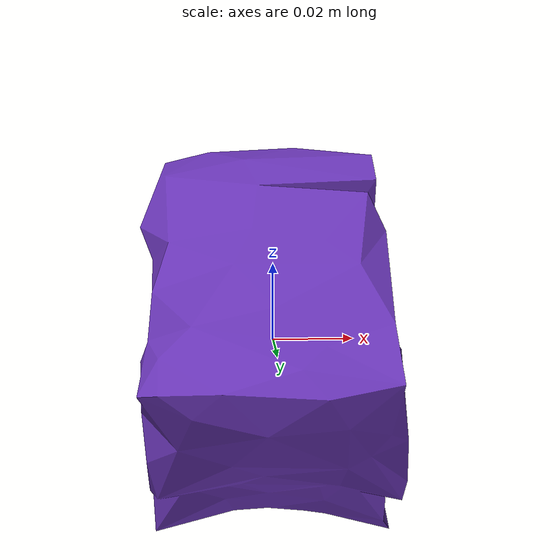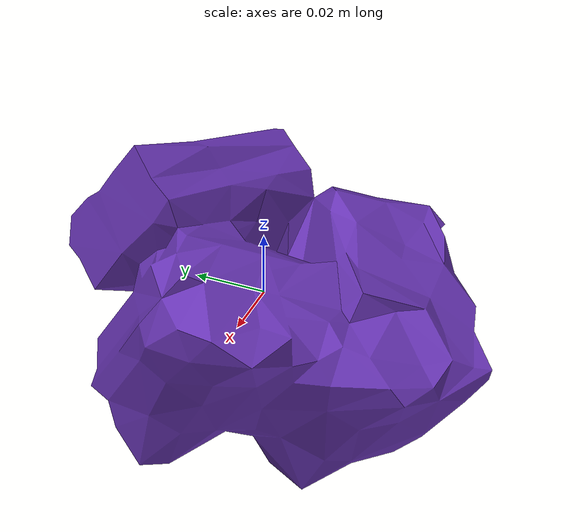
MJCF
<mujoco model="top_watertight_tiny">

  <asset>
    <mesh file="top_watertight_tiny.obj"/>
    <mesh file="top_watertight_tiny_collision_0.obj"/>
    <mesh file="top_watertight_tiny_collision_1.obj"/>
    <mesh file="top_watertight_tiny_collision_2.obj"/>
    <mesh file="top_watertight_tiny_collision_3.obj"/>
    <mesh file="top_watertight_tiny_collision_4.obj"/>
    <mesh file="top_watertight_tiny_collision_5.obj"/>
    <mesh file="top_watertight_tiny_collision_6.obj"/>
    <mesh file="top_watertight_tiny_collision_7.obj"/>
    <mesh file="top_watertight_tiny_collision_8.obj"/>
    <mesh file="top_watertight_tiny_collision_9.obj"/>
    <mesh file="top_watertight_tiny_collision_10.obj"/>
    <mesh file="top_watertight_tiny_collision_11.obj"/>
    <mesh file="top_watertight_tiny_collision_12.obj"/>
    <mesh file="top_watertight_tiny_collision_13.obj"/>
    <mesh file="top_watertight_tiny_collision_14.obj"/>
    <mesh file="top_watertight_tiny_collision_15.obj"/>
    <mesh file="top_watertight_tiny_collision_16.obj"/>
    <mesh file="top_watertight_tiny_collision_17.obj"/>
    <mesh file="top_watertight_tiny_collision_18.obj"/>
    <mesh file="top_watertight_tiny_collision_19.obj"/>
    <mesh file="top_watertight_tiny_collision_20.obj"/>
    <mesh file="top_watertight_tiny_collision_21.obj"/>
    <mesh file="top_watertight_tiny_collision_22.obj"/>
    <mesh file="top_watertight_tiny_collision_23.obj"/>
    <mesh file="top_watertight_tiny_collision_24.obj"/>
    <mesh file="top_watertight_tiny_collision_25.obj"/>
    <mesh file="top_watertight_tiny_collision_26.obj"/>
    <mesh file="top_watertight_tiny_collision_27.obj"/>
    <mesh file="top_watertight_tiny_collision_28.obj"/>
    <mesh file="top_watertight_tiny_collision_29.obj"/>
    <mesh file="top_watertight_tiny_collision_30.obj"/>
    <mesh file="top_watertight_tiny_collision_31.obj"/>
    <mesh file="top_watertight_tiny_collision_32.obj"/>
    <mesh file="top_watertight_tiny_collision_33.obj"/>
    <mesh file="top_watertight_tiny_collision_34.obj"/>
    <mesh file="top_watertight_tiny_collision_35.obj"/>
    <mesh file="top_watertight_tiny_collision_36.obj"/>
    <mesh file="top_watertight_tiny_collision_37.obj"/>
    <mesh file="top_watertight_tiny_collision_38.obj"/>
    <mesh file="top_watertight_tiny_collision_39.obj"/>
    <mesh file="top_watertight_tiny_collision_40.obj"/>
    <mesh file="top_watertight_tiny_collision_41.obj"/>
    <mesh file="top_watertight_tiny_collision_42.obj"/>
    <mesh file="top_watertight_tiny_collision_43.obj"/>
    <mesh file="top_watertight_tiny_collision_44.obj"/>
    <mesh file="top_watertight_tiny_collision_45.obj"/>
    <mesh file="top_watertight_tiny_collision_46.obj"/>
  </asset>
  <worldbody>
    <body name="top_watertight_tiny">
      <freejoint/>
      <geom solimp="0.90 0.95 0.001" solref="0.02 1.0" density="100" friction="0.95 0.4 0.3" rgba="0.4 0.2 0.7 1" mesh="top_watertight_tiny" group="2" type="mesh" contype="0" conaffinity="0"/>
      <geom solimp="0.90 0.95 0.001" solref="0.02 1.0" density="100" friction="0.95 0.4 0.3" mesh="top_watertight_tiny_collision_0" rgba="0.8789057015531391 0.9795994640368366 0.813010173813531 1" group="3" type="mesh"/>
      <geom solimp="0.90 0.95 0.001" solref="0.02 1.0" density="100" friction="0.95 0.4 0.3" mesh="top_watertight_tiny_collision_1" rgba="0.8269957039042385 0.6930194602796532 0.49572664424239576 1" group="3" type="mesh"/>
      <geom solimp="0.90 0.95 0.001" solref="0.02 1.0" density="100" friction="0.95 0.4 0.3" mesh="top_watertight_tiny_collision_2" rgba="0.7753977788439487 0.030827224695126 0.9653889981956425 1" group="3" type="mesh"/>
      <geom solimp="0.90 0.95 0.001" solref="0.02 1.0" density="100" friction="0.95 0.4 0.3" mesh="top_watertight_tiny_collision_3" rgba="0.04916142695101067 0.4462305657748179 0.6066776407132272 1" group="3" type="mesh"/>
      <geom solimp="0.90 0.95 0.001" solref="0.02 1.0" density="100" friction="0.95 0.4 0.3" mesh="top_watertight_tiny_collision_4" rgba="0.6390554225004627 0.41450779144883243 0.7675728899906572 1" group="3" type="mesh"/>
      <geom solimp="0.90 0.95 0.001" solref="0.02 1.0" density="100" friction="0.95 0.4 0.3" mesh="top_watertight_tiny_collision_5" rgba="0.874015873884264 0.06428050105766347 0.48990608668945157 1" group="3" type="mesh"/>
      <geom solimp="0.90 0.95 0.001" solref="0.02 1.0" density="100" friction="0.95 0.4 0.3" mesh="top_watertight_tiny_collision_6" rgba="0.42431912544873096 0.7610477745635167 0.6992953303936881 1" group="3" type="mesh"/>
      <geom solimp="0.90 0.95 0.001" solref="0.02 1.0" density="100" friction="0.95 0.4 0.3" mesh="top_watertight_tiny_collision_7" rgba="0.15440581398732034 0.5288853172441055 0.3470849717280966 1" group="3" type="mesh"/>
      <geom solimp="0.90 0.95 0.001" solref="0.02 1.0" density="100" friction="0.95 0.4 0.3" mesh="top_watertight_tiny_collision_8" rgba="0.5626903105612336 0.11574557386385098 0.351118623564345 1" group="3" type="mesh"/>
      <geom solimp="0.90 0.95 0.001" solref="0.02 1.0" density="100" friction="0.95 0.4 0.3" mesh="top_watertight_tiny_collision_9" rgba="0.22741964365880396 0.018070590472487047 0.9060914291170475 1" group="3" type="mesh"/>
      <geom solimp="0.90 0.95 0.001" solref="0.02 1.0" density="100" friction="0.95 0.4 0.3" mesh="top_watertight_tiny_collision_10" rgba="0.5222883388619958 0.26812727481960386 0.5811096261207229 1" group="3" type="mesh"/>
      <geom solimp="0.90 0.95 0.001" solref="0.02 1.0" density="100" friction="0.95 0.4 0.3" mesh="top_watertight_tiny_collision_11" rgba="0.18358823708894623 0.7686155497230626 0.6838168368764023 1" group="3" type="mesh"/>
      <geom solimp="0.90 0.95 0.001" solref="0.02 1.0" density="100" friction="0.95 0.4 0.3" mesh="top_watertight_tiny_collision_12" rgba="0.37772840315476053 0.38082552764259203 0.572187072569872 1" group="3" type="mesh"/>
      <geom solimp="0.90 0.95 0.001" solref="0.02 1.0" density="100" friction="0.95 0.4 0.3" mesh="top_watertight_tiny_collision_13" rgba="0.47432937342295034 0.7016688652716457 0.37213932110715264 1" group="3" type="mesh"/>
      <geom solimp="0.90 0.95 0.001" solref="0.02 1.0" density="100" friction="0.95 0.4 0.3" mesh="top_watertight_tiny_collision_14" rgba="0.6847202688996531 0.5440699129645219 0.9606474060478593 1" group="3" type="mesh"/>
      <geom solimp="0.90 0.95 0.001" solref="0.02 1.0" density="100" friction="0.95 0.4 0.3" mesh="top_watertight_tiny_collision_15" rgba="0.9479362272215521 0.02156147813066933 0.716612980421734 1" group="3" type="mesh"/>
      <geom solimp="0.90 0.95 0.001" solref="0.02 1.0" density="100" friction="0.95 0.4 0.3" mesh="top_watertight_tiny_collision_16" rgba="0.9538009110551573 0.6657504012141455 0.0785634836965654 1" group="3" type="mesh"/>
      <geom solimp="0.90 0.95 0.001" solref="0.02 1.0" density="100" friction="0.95 0.4 0.3" mesh="top_watertight_tiny_collision_17" rgba="0.09490124566087377 0.7555423247967329 0.48700630159472513 1" group="3" type="mesh"/>
      <geom solimp="0.90 0.95 0.001" solref="0.02 1.0" density="100" friction="0.95 0.4 0.3" mesh="top_watertight_tiny_collision_18" rgba="0.38177113351281056 0.8648240281562807 0.17344064155078953 1" group="3" type="mesh"/>
      <geom solimp="0.90 0.95 0.001" solref="0.02 1.0" density="100" friction="0.95 0.4 0.3" mesh="top_watertight_tiny_collision_19" rgba="0.4018580857332408 0.10916240909560249 0.24466670514723687 1" group="3" type="mesh"/>
      <geom solimp="0.90 0.95 0.001" solref="0.02 1.0" density="100" friction="0.95 0.4 0.3" mesh="top_watertight_tiny_collision_20" rgba="0.11548428134288535 0.08399452765747872 0.9400143969625043 1" group="3" type="mesh"/>
      <geom solimp="0.90 0.95 0.001" solref="0.02 1.0" density="100" friction="0.95 0.4 0.3" mesh="top_watertight_tiny_collision_21" rgba="0.9710992890859642 0.09282020980820183 0.21552355676573864 1" group="3" type="mesh"/>
      <geom solimp="0.90 0.95 0.001" solref="0.02 1.0" density="100" friction="0.95 0.4 0.3" mesh="top_watertight_tiny_collision_22" rgba="0.2097683660892128 0.5423391791398445 0.8478522114071785 1" group="3" type="mesh"/>
      <geom solimp="0.90 0.95 0.001" solref="0.02 1.0" density="100" friction="0.95 0.4 0.3" mesh="top_watertight_tiny_collision_23" rgba="0.4332273385509655 0.18301943961468115 0.5407096844413061 1" group="3" type="mesh"/>
      <geom solimp="0.90 0.95 0.001" solref="0.02 1.0" density="100" friction="0.95 0.4 0.3" mesh="top_watertight_tiny_collision_24" rgba="0.8103687371489551 0.43597717710427086 0.6058743222153554 1" group="3" type="mesh"/>
      <geom solimp="0.90 0.95 0.001" solref="0.02 1.0" density="100" friction="0.95 0.4 0.3" mesh="top_watertight_tiny_collision_25" rgba="0.8184554482854945 0.8491812155200806 0.8540523596920206 1" group="3" type="mesh"/>
      <geom solimp="0.90 0.95 0.001" solref="0.02 1.0" density="100" friction="0.95 0.4 0.3" mesh="top_watertight_tiny_collision_26" rgba="0.4649336923576135 0.4716089593018705 0.0006380659178363279 1" group="3" type="mesh"/>
      <geom solimp="0.90 0.95 0.001" solref="0.02 1.0" density="100" friction="0.95 0.4 0.3" mesh="top_watertight_tiny_collision_27" rgba="0.939786096663444 0.546916852857682 0.6379882995384035 1" group="3" type="mesh"/>
      <geom solimp="0.90 0.95 0.001" solref="0.02 1.0" density="100" friction="0.95 0.4 0.3" mesh="top_watertight_tiny_collision_28" rgba="0.17819177743132808 0.26525834251729385 0.4527958877409344 1" group="3" type="mesh"/>
      <geom solimp="0.90 0.95 0.001" solref="0.02 1.0" density="100" friction="0.95 0.4 0.3" mesh="top_watertight_tiny_collision_29" rgba="0.9213060068994443 0.8688426385216839 0.5902816521888042 1" group="3" type="mesh"/>
      <geom solimp="0.90 0.95 0.001" solref="0.02 1.0" density="100" friction="0.95 0.4 0.3" mesh="top_watertight_tiny_collision_30" rgba="0.7545925605804813 0.6585306514646764 0.9031296054258904 1" group="3" type="mesh"/>
      <geom solimp="0.90 0.95 0.001" solref="0.02 1.0" density="100" friction="0.95 0.4 0.3" mesh="top_watertight_tiny_collision_31" rgba="0.9224717445593139 0.37785270870958143 0.5364332866556558 1" group="3" type="mesh"/>
      <geom solimp="0.90 0.95 0.001" solref="0.02 1.0" density="100" friction="0.95 0.4 0.3" mesh="top_watertight_tiny_collision_32" rgba="0.654110442097909 0.1555007762656463 0.4572186713509787 1" group="3" type="mesh"/>
      <geom solimp="0.90 0.95 0.001" solref="0.02 1.0" density="100" friction="0.95 0.4 0.3" mesh="top_watertight_tiny_collision_33" rgba="0.010201892189158568 0.3346853333752946 0.38828435129365546 1" group="3" type="mesh"/>
      <geom solimp="0.90 0.95 0.001" solref="0.02 1.0" density="100" friction="0.95 0.4 0.3" mesh="top_watertight_tiny_collision_34" rgba="0.7700839072200967 0.35906105678613154 0.5230795969179504 1" group="3" type="mesh"/>
      <geom solimp="0.90 0.95 0.001" solref="0.02 1.0" density="100" friction="0.95 0.4 0.3" mesh="top_watertight_tiny_collision_35" rgba="0.5860451456643304 0.6980885564495887 0.21011260083518835 1" group="3" type="mesh"/>
      <geom solimp="0.90 0.95 0.001" solref="0.02 1.0" density="100" friction="0.95 0.4 0.3" mesh="top_watertight_tiny_collision_36" rgba="0.7296531804384233 0.858231398119365 0.7637020376199236 1" group="3" type="mesh"/>
      <geom solimp="0.90 0.95 0.001" solref="0.02 1.0" density="100" friction="0.95 0.4 0.3" mesh="top_watertight_tiny_collision_37" rgba="0.18113893866992137 0.8779748519554416 0.43420767575901575 1" group="3" type="mesh"/>
      <geom solimp="0.90 0.95 0.001" solref="0.02 1.0" density="100" friction="0.95 0.4 0.3" mesh="top_watertight_tiny_collision_38" rgba="0.0014926881380397106 0.5438457790209009 0.6254849603354282 1" group="3" type="mesh"/>
      <geom solimp="0.90 0.95 0.001" solref="0.02 1.0" density="100" friction="0.95 0.4 0.3" mesh="top_watertight_tiny_collision_39" rgba="0.884472935705879 0.16929649141564662 0.20361929353247465 1" group="3" type="mesh"/>
      <geom solimp="0.90 0.95 0.001" solref="0.02 1.0" density="100" friction="0.95 0.4 0.3" mesh="top_watertight_tiny_collision_40" rgba="0.42097452583390005 0.45440308938928653 0.05889411863830396 1" group="3" type="mesh"/>
      <geom solimp="0.90 0.95 0.001" solref="0.02 1.0" density="100" friction="0.95 0.4 0.3" mesh="top_watertight_tiny_collision_41" rgba="0.8156374947755513 0.4453003234573132 0.35663566933045043 1" group="3" type="mesh"/>
      <geom solimp="0.90 0.95 0.001" solref="0.02 1.0" density="100" friction="0.95 0.4 0.3" mesh="top_watertight_tiny_collision_42" rgba="0.24182002647830259 0.20594363893218726 0.4869747418010363 1" group="3" type="mesh"/>
      <geom solimp="0.90 0.95 0.001" solref="0.02 1.0" density="100" friction="0.95 0.4 0.3" mesh="top_watertight_tiny_collision_43" rgba="0.8575888553770681 0.6974488610620693 0.5389032735911444 1" group="3" type="mesh"/>
      <geom solimp="0.90 0.95 0.001" solref="0.02 1.0" density="100" friction="0.95 0.4 0.3" mesh="top_watertight_tiny_collision_44" rgba="0.8448563724601241 0.5352985155555774 0.053691752567608275 1" group="3" type="mesh"/>
      <geom solimp="0.90 0.95 0.001" solref="0.02 1.0" density="100" friction="0.95 0.4 0.3" mesh="top_watertight_tiny_collision_45" rgba="0.22099540452412014 0.512843585565876 0.042328425530268055 1" group="3" type="mesh"/>
      <geom solimp="0.90 0.95 0.001" solref="0.02 1.0" density="100" friction="0.95 0.4 0.3" mesh="top_watertight_tiny_collision_46" rgba="0.3653554771774761 0.6360500420757099 0.6216703025062664 1" group="3" type="mesh"/>
    </body>
  </worldbody>
</mujoco>
